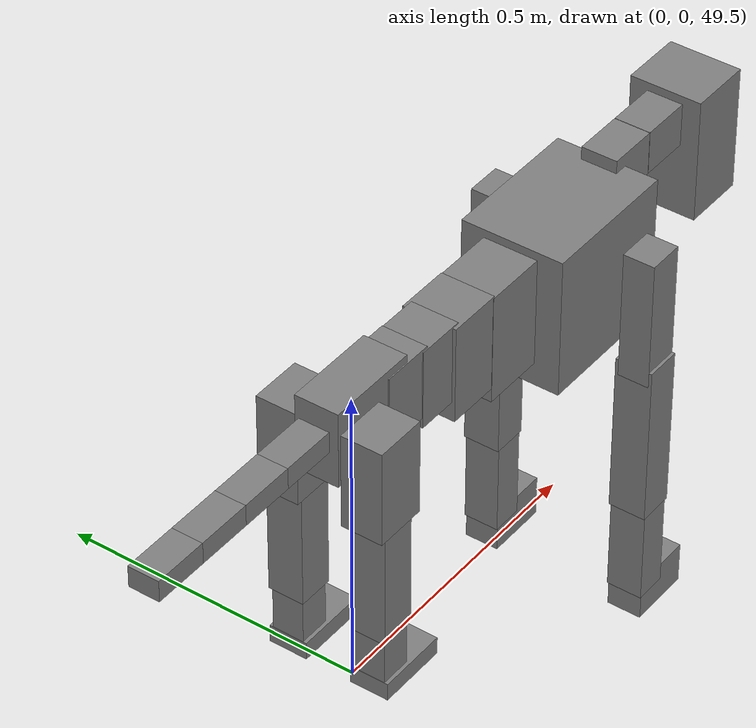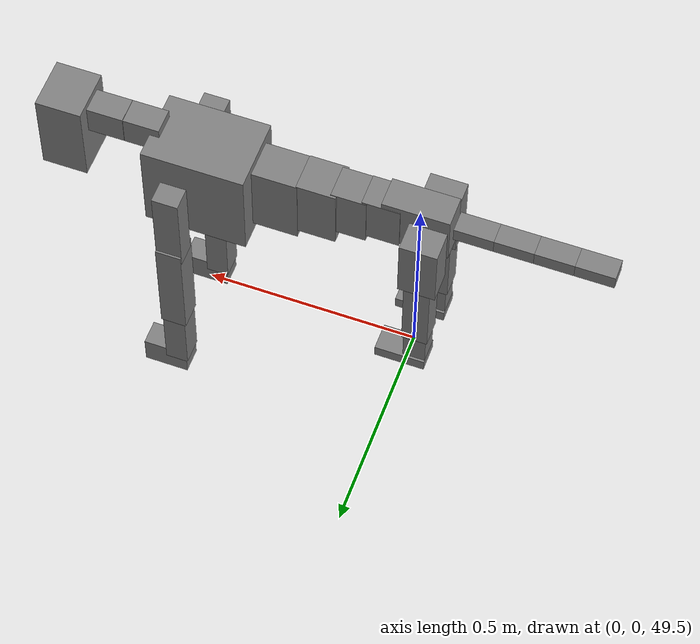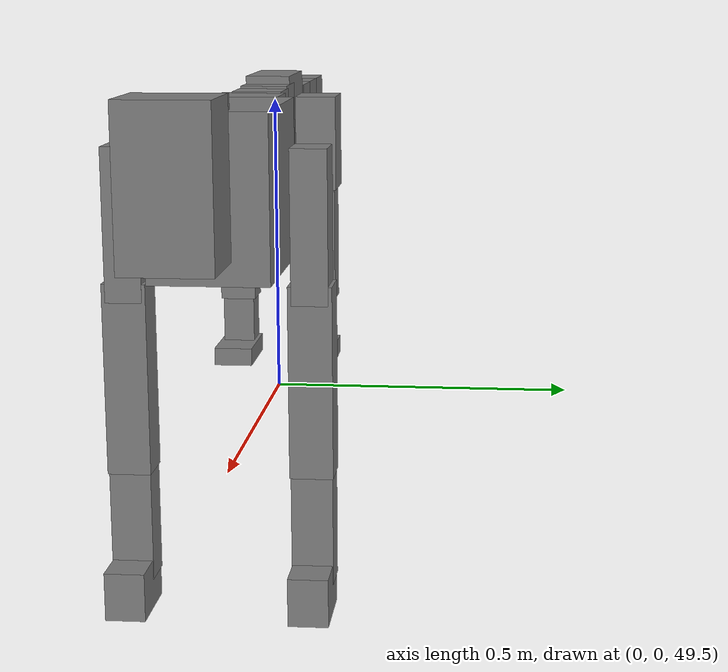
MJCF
<mujoco model="dog">

    <default>
        <joint armature="0.02" stiffness="1" damping="0.2" limited="true"/>
        <geom condim="3" friction="1 0.05 0.05" margin="0.01"/>
        <motor ctrllimited="true" ctrlrange="-1.0 1.0" forcelimited="true" gear="50"/>
    </default>

    <compiler inertiafromgeom="true" angle="radian"/>

    <option timestep="0.016" iterations="50" tolerance="1e-10" solver="Newton" jacobian="dense" cone="pyramidal"/>

    <size nconmax="20000" njmax="60000" nstack="5000000"/>
    <visual>
        <map force="0.1" zfar="30"/>
        <rgba haze="0.15 0.25 0.35 1"/>
        <quality shadowsize="2048"/>
        <global offwidth="800" offheight="800"/>
    </visual>

    <asset>
        <texture type="skybox" builtin="gradient" rgb1="0.3 0.5 0.7" rgb2="0 0 0" width="512" height="512"/>
        <texture name="texplane" type="2d" builtin="checker" rgb1=".2 .3 .4" rgb2=".1 0.15 0.2" width="512" height="512"
                 mark="cross" markrgb=".8 .8 .8"/>
        <texture name="texgeom" type="cube" builtin="flat" mark="cross" width="127" height="1278" rgb1="0.8 0.6 0.4"
                 rgb2="0.8 0.6 0.4" markrgb="1 1 1" random="0.01"/>

        <material name="matplane" reflectance="0.3" texture="texplane" texrepeat="1 1" texuniform="true"/>
        <material name="matgeom" texture="texgeom" texuniform="true" rgba="0.8 0.6 .4 1"/>
    </asset>

    <worldbody>
        <geom name="floor" pos="0 0 0" size="0 0 .25" type="plane" material="matplane" condim="3"/>

        <light directional="false" diffuse=".2 .2 .2" specular="0 0 0" pos="0 0 5" dir="0 0 -1" castshadow="false"/>
        <light mode="targetbodycom" target="torso" directional="false" diffuse=".8 .8 .8" specular="0.3 0.3 0.3"
               pos="0 0 4.0" dir="0 0 -1"/>

        <body name="root" pos="0 0 50">
            <freejoint name="root_1"/>
            <geom type="box" pos="0 0 -0.02" size="0.0774  0.0358  0.063" density="2030"/>

            <body name="spine1" pos="0.054 0 0">
                <joint name="spine1_y" axis="0 1 0" range="0 0.7" limited="true"/>
                <geom type="box" pos="0.02375 0 -0.03" size="0.04375  0.0375  0.05985" density="2030"/>

                <body name="spine2" pos="0.0612 0 0">
                    <joint name="spine2_y" axis="0 1 0" range="-0.15 0.15" limited="true"/>
                    <geom type="box" pos="0.03555  0  -0.04" size="0.04055  0.039  0.06615" density="2030"/>

                    <body name="spine3" pos="0.0730 0 0">
                        <joint name="spine3_y" axis="0 1 0" range="-0.15 0.15" limited="true"/>
                        <geom type="box" pos="0.03555  0  -0.057" size="0.04555  0.0445  0.081" density="2030"/>

                        <body name="spine4" pos="0.0780 0 0">
                            <joint name="spine4_y" axis="0 1 0" range="-0.15 0.15" limited="true"/>
                            <geom type="box" pos="0.05265  0  -0.07" size="0.05265  0.045  0.09135" density="2030"/>

                            <body name="torso" pos="0.1082 0 0">
                                <joint name="torso_y" axis="0 1 0" range="-0.15 0.15" limited="true"/>
                                <geom type="box" pos="0.11925  0  -0.085" size="0.11925  0.085  0.11745"
                                      density="2030"/>

                                <body name="neck1" pos="0.2160  0   0.0180">
                                    <joint name="neck1_y" axis="0 1 0" range="-1.2  -1" limited="true"/>
                                    <geom type="box" pos="0.0423  0  0" size="0.0423  0.03  0.036" density="2325"/>

                                    <body name="neck2" pos="0.0853  0  0">
                                        <joint name="neck2_y" axis="0 1 0" range="0.1  0" limited="true"/>
                                        <geom type="box" pos="0.0423  0  0" size="0.0423  0.03  0.036" density="2325"/>

                                        <body name="head" pos="0.0853  0  0">
                                            <joint name="head_y" axis="0 1 0" range="-0.3  -0.2" limited="true"/>
                                            <geom type="box" pos="0.0531  0  -0.055" size="0.0531  0.06  0.1044"
                                                  density="4030"/>

                                        </body>
                                    </body>
                                </body>

                                <body name="front_shoulder" pos="0.156  0   -0.0480">
                                    <joint name="front_shoulder_y" axis="0 1 0" range="-1 1.5" limited="true"/>
                                    <geom type="box" pos="0 0.13 -0.0819" size="0.0303  0.0259  0.1085" density="1158"/>
                                    <geom type="box" pos="0 -0.13 -0.0819" size="0.0303  0.0259  0.1085"
                                          density="1158"/>

                                    <body name="front_elbow" pos="0  0  -0.1637">
                                        <joint name="front_elbow_y" axis="0 1 0" range="-2 0" limited="true"/>
                                        <geom type="box" pos="0 0.13 -0.1374" size="0.0302  0.0309  0.1374"
                                              density="1081"/>
                                        <geom type="box" pos="0 -0.13 -0.1374" size="0.0302  0.0309  0.1374"
                                              density="1081"/>

                                        <body name="front_wrist" pos="0  0  -0.2748">
                                            <joint name="front_wrist_y" axis="0 1 0" range="-0.2 0" limited="true"/>
                                            <geom type="box" pos="0 0.13 -0.0725" size="0.0267  0.0296  0.0857"
                                                  density="1664"/>
                                            <geom type="box" pos="0 -0.13 -0.0725" size="0.0267  0.0296  0.0857"
                                                  density="1664"/>

                                            <body name="front_finger_end" pos="0  0  -0.1451">
                                                <joint name="front_finger_y" axis="0 1 0" range="-0.4 1"
                                                       limited="true"/>
                                                <geom type="box" pos="0.0287  0.13  -0.0200"
                                                      size="0.0525  0.0287  0.0350" density="1515"/>
                                                <geom type="box" pos="0.0287  -0.13  -0.0200"
                                                      size="0.0525  0.0287  0.0350" density="1515"/>

                                            </body>

                                        </body>
                                    </body>
                                </body>

                            </body>
                        </body>
                    </body>
                </body>
            </body>

            <body name="back_hip" pos="-0.03 0 -0.018">
                <joint name="back_hip_y" axis="0 1 0" range="-1.5 0.3" limited="true"/>
                <geom type="box" pos="0 0.07 -0.0563" size="0.0430  0.0338  0.0791" density="1154"/>
                <geom type="box" pos="0 -0.07 -0.0563" size="0.0430  0.0338  0.0791" density="1154"/>

                <body name="back_knee" pos="0  0  -0.1127">
                    <joint name="back_knee_y" axis="0 1 0" range="0 2.8" limited="true"/>
                    <geom type="box" pos="0 0.07 -0.1006" size="0.0300  0.0295  0.1161" density="1227"/>
                    <geom type="box" pos="0 -0.07 -0.1006" size="0.0300  0.0295  0.1161" density="1227"/>

                    <body name="back_ankle" pos="0  0  -0.2012">
                        <joint name="back_ankle_y" axis="0 1 0" range="-2.2 0" limited="true"/>
                        <geom type="box" pos="0 0.07 -0.0526" size="0.0261  0.0261  0.0639" density="1284"/>
                        <geom type="box" pos="0 -0.07 -0.0526" size="0.0261  0.0261  0.0639" density="1284"/>

                        <body name="back_toe_end" pos="0  0  -0.1053">
                            <joint name="back_toe_y" axis="0 1 0" range="-0.4 1" limited="true"/>
                            <geom type="box" pos="0.0320  0.07  0.0002" size="0.0587  0.0320  0.0148" density="1515"/>
                            <geom type="box" pos="0.0320  -0.07  0.0002" size="0.0587  0.0320  0.0148" density="1515"/>

                        </body>
                    </body>
                </body>
            </body>

            <body name="tail1" pos="-0.074 0 -0.006">
                <joint name="tail1_y" axis="0 1 0" range="-0.2 0.2" limited="true"/>
                <geom type="box" pos="-0.0536  0  0" size="0.045  0.025  0.0175" density="1587"/>

                <body name="tail2" pos="-0.09 0 0">
                    <joint name="tail2_y" axis="0 1 0" range="-0.2 0.2" limited="true"/>
                    <geom type="box" pos="-0.0536  0  0" size="0.045  0.025  0.0175" density="1587"/>

                    <body name="tail3" pos="-0.09 0 0">
                        <joint name="tail3_y" axis="0 1 0" range="-0.2 0.2" limited="true"/>
                        <geom type="box" pos="-0.0536  0  0" size="0.045  0.025  0.0175" density="1587"/>

                        <body name="tail4" pos="-0.09 0 0">
                            <joint name="tail4_y" axis="0 1 0" range="-0.2 0.2" limited="true"/>
                            <geom type="box" pos="-0.0536  0  0" size="0.045  0.025  0.0175" density="1587"/>

                        </body>
                    </body>
                </body>
            </body>
        </body>
    </worldbody>

    <actuator>
        <motor joint="spine1_y" forcerange="-150 150     "/>
        <motor joint="spine2_y" forcerange="-150 150     "/>
        <motor joint="spine3_y" forcerange="-150 150     "/>
        <motor joint="spine4_y" forcerange="-150 150     "/>
        <motor joint="torso_y" forcerange="-150 150     "/>
        <motor joint="neck1_y" forcerange="-100 100       "/>
        <motor joint="neck2_y" forcerange="-100 100       "/>
        <motor joint="head_y" forcerange="-150 150       "/>
        <motor joint="front_shoulder_y" forcerange="-152.92 119.52"/>
        <motor joint="front_elbow_y" forcerange="-126.90 197.79"/>
        <motor joint="front_wrist_y" forcerange="-111.07 126.08"/>
        <motor joint="front_finger_y" forcerange="-73.05 39.77"/>
        <motor joint="back_hip_y" forcerange="-388.17 261.85"/>
        <motor joint="back_knee_y" forcerange="-313.45 316.32"/>
        <motor joint="back_angle_y" forcerange="-152.32 164.74"/>
        <motor joint="back_toe_y" forcerange="-107.72 68.30"/>
        <motor joint="tail1_y" forcerange="-50 50     "/>
        <motor joint="tail2_y" forcerange="-50 50     "/>
        <motor joint="tail3_y" forcerange="-50 50     "/>
        <motor joint="tail4_y" forcerange="-50 50     "/>
    </actuator>
</mujoco>
